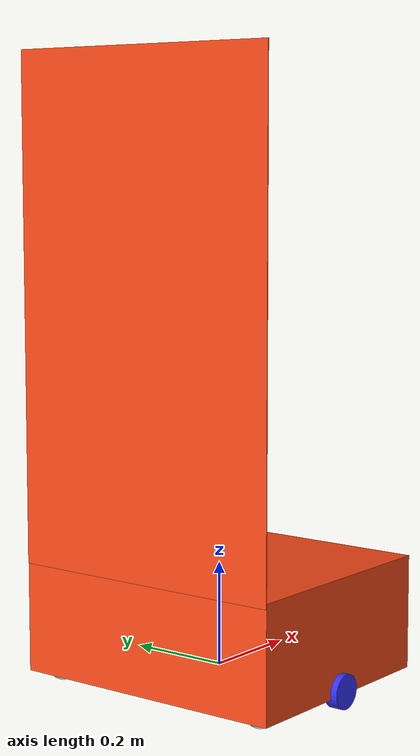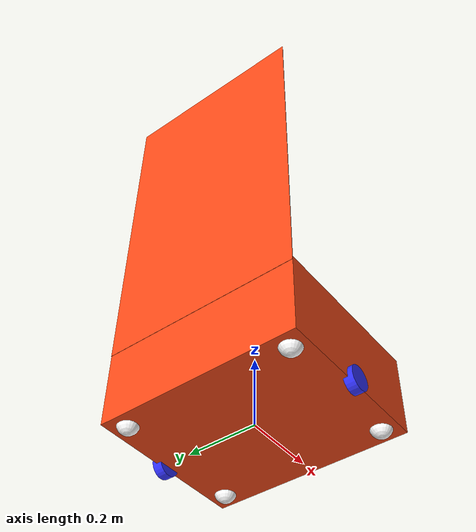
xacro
<?xml version="1.0"?>
<robot xmlns:xacro="http://www.ros.org/wiki/xacro"  name="robot">

    <xacro:arg name="use_ros2_control" default="true"/>
    <xacro:arg name="sim_mode" default="false"/>

    <!-- This has the basic robot structure defined -->
    <xacro:include filename="robot_core.xacro" />

    <!-- This has the diff drive controller - ros2 control package defined -->
    <xacro:if value="$(arg use_ros2_control)">
        <xacro:include filename="ros2_control.xacro" />
    </xacro:if>

    <!-- This has the diff drive controller : gazebo plugin - ros2 control package defined -->
    <xacro:unless value="$(arg use_ros2_control)">
        <xacro:include filename="gazebo_control.xacro" />
    </xacro:unless>

</robot>

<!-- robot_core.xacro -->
<robot xmlns:xacro="http://www.ros.org/wiki/xacro">
    <!--This file includes everyhing that would constitute the robot body -->

    <!-- Contains all mathematically computed intertial values -->
    <xacro:include filename="inertial_macros.xacro"/>

    <!-- This includes all the dimentions of the body so we can change them in one place when differed. -->
    <xacro:include filename="robot_measurements.xacro" />

    <!-- Includes all the materials. -->
    <xacro:include filename="materials.xacro" />

    <!-- BASE LINK -->
    <link name="base_link">
    </link>

    <!-- BASE_FOOTPRINT LINK -->
    <joint name="base_footprint_joint" type="fixed">
        <parent link="base_link"/>
        <child link="base_footprint"/>
        <origin xyz="0 0 0" rpy="0 0 0"/>
    </joint>

    <link name="base_footprint">
    </link>

    <!-- CHASSIS LINK -->
    <joint name="chassis_joint" type="fixed">
        <parent link="base_link"/>
        <child link="chassis"/>
        <origin xyz="${-wheel_offset_x} 0 ${-wheel_offset_z}"/>
    </joint>

    <link name="chassis">
        <visual>
            <origin xyz="${chassis_length/2} 0 ${chassis_height/2}"/>
            <geometry>
                <box size="${chassis_length} ${chassis_width} ${chassis_height}"/>
            </geometry>
            <material name="orange"/>
        </visual>
        <collision>
            <origin xyz="${chassis_length/2} 0 ${chassis_height/2}"/>
            <geometry>
                <box size="${chassis_length} ${chassis_width} ${chassis_height}"/>
            </geometry>
        </collision>
        <xacro:inertial_box mass="0.5" x="${chassis_length}" y="${chassis_width}" z="${chassis_height}">
            <origin xyz="${chassis_length/2} 0 ${chassis_height/2}" rpy="0 0 0"/>
        </xacro:inertial_box>
    </link>

    <gazebo reference="chassis">
        <material>Gazebo/Orange</material>
    </gazebo>

    <!-- LEFT WHEEL LINK -->
    <joint name="left_wheel_joint" type="continuous">
        <parent link="base_link"/>
        <child link="left_wheel"/>
        <origin xyz="0 ${wheel_offset_y} 0" rpy="-${pi/2} 0 0" />
        <axis xyz="0 0 1"/>
    </joint>

    <link name="left_wheel">
        <visual>
            <geometry>
                <cylinder radius="${wheel_radius}" length="${wheel_thickness}"/>
            </geometry>
            <material name="blue"/>
        </visual>
        <collision>
            <geometry>
                <sphere radius="${wheel_radius}"/>
            </geometry>
        </collision>
        <xacro:inertial_cylinder mass="${wheel_mass}" length="${wheel_thickness}" radius="${wheel_radius}">
            <origin xyz="0 0 0" rpy="0 0 0"/>
        </xacro:inertial_cylinder>
    </link>

    <gazebo reference="left_wheel">
        <material>Gazebo/Blue</material>
    </gazebo>

    <!-- RIGHT WHEEL LINK -->
    <joint name="right_wheel_joint" type="continuous">
        <parent link="base_link"/>
        <child link="right_wheel"/>
        <origin xyz="0 ${-wheel_offset_y} 0" rpy="${pi/2} 0 0" />
        <axis xyz="0 0 -1"/>
    </joint>

    <link name="right_wheel">
        <visual>
            <geometry>
                <cylinder radius="${wheel_radius}" length="${wheel_thickness}"/>
            </geometry>
            <material name="blue"/>
        </visual>
        <collision>
            <geometry>
                <sphere radius="${wheel_radius}"/>
            </geometry>
        </collision>
        <xacro:inertial_cylinder mass="${wheel_mass}" length="${wheel_thickness}" radius="${wheel_radius}">
            <origin xyz="0 0 0" rpy="0 0 0"/>
        </xacro:inertial_cylinder>
    </link>

    <gazebo reference="right_wheel">
        <material>Gazebo/Blue</material>
    </gazebo>

    <!-- CASTER WHEEL LINK Front-Left -->
    <joint name="caster_wheel_joint_fl" type="fixed">
        <parent link="base_link"/>
        <child link="caster_wheel_fl"/>
        <origin xyz="${caster_wheel_offset_x} ${caster_wheel_offset_y} ${caster_wheel_offset_z}"/>
    </joint>

    <link name="caster_wheel_fl">
        <visual>
            <geometry>
                <sphere radius="${caster_wheel_radius}"/>
            </geometry>
            <material name="white"/>
        </visual>
        <collision>
            <geometry>
                <sphere radius="${caster_wheel_radius}"/>
            </geometry>
        </collision>
        <xacro:inertial_sphere mass="${caster_wheel_mass}" radius="${caster_wheel_radius}">
            <origin xyz="0 0 0" rpy="0 0 0"/>
        </xacro:inertial_sphere>
    </link>

    <gazebo reference="caster_wheel_fl">
        <material>Gazebo/White</material>
        <!--the lesser the value the lesser the friction-->
        <mu1 value="0.000000000000000001"/>
        <mu2 value="0.000000000000000001"/>
    </gazebo>

    <!-- CASTER WHEEL LINK Front-Right -->
    <joint name="caster_wheel_joint_fr" type="fixed">
        <parent link="base_link"/>
        <child link="caster_wheel_fr"/>
        <origin xyz="${caster_wheel_offset_x} ${-caster_wheel_offset_y} ${caster_wheel_offset_z}"/>
    </joint>

    <link name="caster_wheel_fr">
        <visual>
            <geometry>
                <sphere radius="${caster_wheel_radius}"/>
            </geometry>
            <material name="white"/>
        </visual>
        <collision>
            <geometry>
                <sphere radius="${caster_wheel_radius}"/>
            </geometry>
        </collision>
        <xacro:inertial_sphere mass="${caster_wheel_mass}" radius="${caster_wheel_radius}">
            <origin xyz="0 0 0" rpy="0 0 0"/>
        </xacro:inertial_sphere>
    </link>

    <gazebo reference="caster_wheel_fr">
        <material>Gazebo/White</material>
        <!--the lesser the value the lesser the friction-->
        <mu1 value="0.000000000000000001"/>
        <mu2 value="0.000000000000000001"/>
    </gazebo>

    <!-- CASTER WHEEL LINK Back-Left -->
    <joint name="caster_wheel_joint_bl" type="fixed">
        <parent link="base_link"/>
        <child link="caster_wheel_bl"/>
        <origin xyz="${-caster_wheel_offset_x} ${caster_wheel_offset_y} ${caster_wheel_offset_z}"/>
    </joint>

    <link name="caster_wheel_bl">
        <visual>
            <geometry>
                <sphere radius="${caster_wheel_radius}"/>
            </geometry>
            <material name="white"/>
        </visual>
        <collision>
            <geometry>
                <sphere radius="${caster_wheel_radius}"/>
            </geometry>
        </collision>
        <xacro:inertial_sphere mass="${caster_wheel_mass}" radius="${caster_wheel_radius}">
            <origin xyz="0 0 0" rpy="0 0 0"/>
        </xacro:inertial_sphere>
    </link>

    <gazebo reference="caster_wheel_bl">
        <material>Gazebo/White</material>
        <!--the lesser the value the lesser the friction-->
        <mu1 value="0.000000000000000001"/>
        <mu2 value="0.000000000000000001"/>
    </gazebo>

    <!-- CASTER WHEEL LINK Back-Right -->
    <joint name="caster_wheel_joint_br" type="fixed">
        <parent link="base_link"/>
        <child link="caster_wheel_br"/>
        <origin xyz="${-caster_wheel_offset_x} ${-caster_wheel_offset_y} ${caster_wheel_offset_z}"/>
    </joint>

    <link name="caster_wheel_br">
        <visual>
            <geometry>
                <sphere radius="${caster_wheel_radius}"/>
            </geometry>
            <material name="white"/>
        </visual>
        <collision>
            <geometry>
                <sphere radius="${caster_wheel_radius}"/>
            </geometry>
        </collision>
        <xacro:inertial_sphere mass="${caster_wheel_mass}" radius="${caster_wheel_radius}">
            <origin xyz="0 0 0" rpy="0 0 0"/>
        </xacro:inertial_sphere>
    </link>

    <gazebo reference="caster_wheel_br">
        <material>Gazebo/White</material>
        <!--the lesser the value the lesser the friction-->
        <mu1 value="0.000000000000000001"/>
        <mu2 value="0.000000000000000001"/>
    </gazebo>

    <!-- Top Plate -->
    <joint name="top_plate_joint" type="fixed">
        <parent link="chassis"/>
        <child link="top_plate"/>
        <origin xyz="0 0 ${-wheel_offset_z+chassis_height}"/>
    </joint>

    <link name="top_plate">
        <visual>
            <origin xyz="0 0 0.480"/>
            <geometry>
                <box size="0.002 ${chassis_width} 0.960"/>
            </geometry>
            <material name="orange"/>
        </visual>
        <collision>
            <origin xyz="0 0 0.480"/>
            <geometry>
                <box size="0.002 ${chassis_width} 0.960"/>
            </geometry>
        </collision>
        <xacro:inertial_box mass="0.005" x="0.002" y="${chassis_width}" z="0.960">
            <origin xyz="0 0 0.480" rpy="0 0 0"/>
        </xacro:inertial_box>
    </link>

    <gazebo reference="chassis">
        <material>Gazebo/White</material>
    </gazebo>

    <!-- Tray one -->

</robot>

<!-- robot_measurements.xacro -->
<robot xmlns:xacro="http://www.ros.org/wiki/xacro">
    <!-- This includes all the dimentions of the body so we can change them in one place when differed. -->

    <xacro:property name="chassis_length" value="0.460"/>
    <xacro:property name="chassis_width" value="0.560"/>
    <xacro:property name="chassis_height" value="0.220"/>
    <xacro:property name="chassis_mass" value="0.23"/>  <!-- To be changed-->
    <xacro:property name="wheel_radius" value="0.033"/> <!-- To be changed-->
    <xacro:property name="wheel_thickness" value="0.026"/> <!-- To be changed-->
    <xacro:property name="wheel_mass" value="0.05"/> <!-- To be changed-->
    <xacro:property name="wheel_offset_x" value="0.230"/> <!--maybe should add half the wheel thickness so that the wheen appears outside the body-->
    <xacro:property name="wheel_offset_y" value="0.280"/>
    <xacro:property name="wheel_offset_z" value="0.01"/> <!-- To be changed-->
    <xacro:property name="caster_wheel_radius" value="0.03"/>
    <xacro:property name="caster_wheel_mass" value="0.01"/>
    <xacro:property name="caster_wheel_offset_x" value="0.185"/>
    <xacro:property name="caster_wheel_offset_y" value="0.235"/>
    <xacro:property name="caster_wheel_offset_z" value="0.0"/>

</robot>

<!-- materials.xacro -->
<robot xmlns:xacro="http://www.ros.org/wiki/xacro">
<!-- Some additional properties -->
    <material name="white">
        <color rgba="1 1 1 1" />
    </material>

    <material name="orange">
        <color rgba="1 0.3 0.1 1"/>
    </material>

    <material name="blue">
        <color rgba="0.2 0.2 1 1"/>
    </material>

    <material name="black">
        <color rgba="0 0 0 1"/>
    </material>

    <material name="red">
        <color rgba="1 0 0 1"/>
    </material>

</robot>
